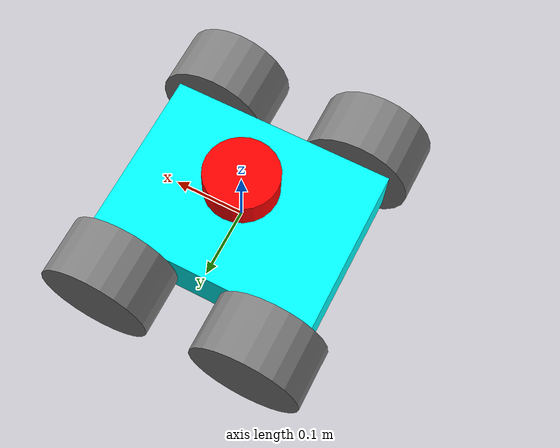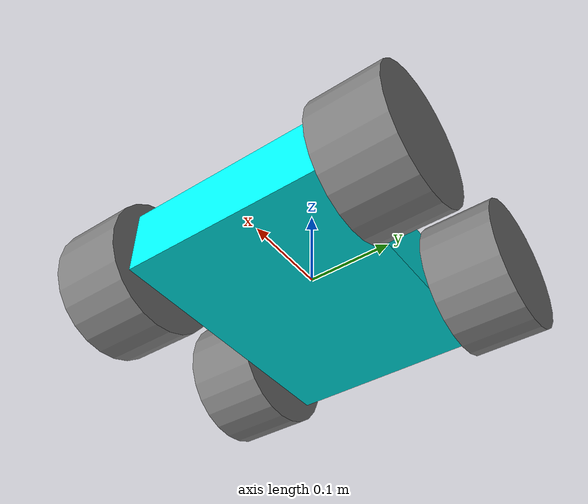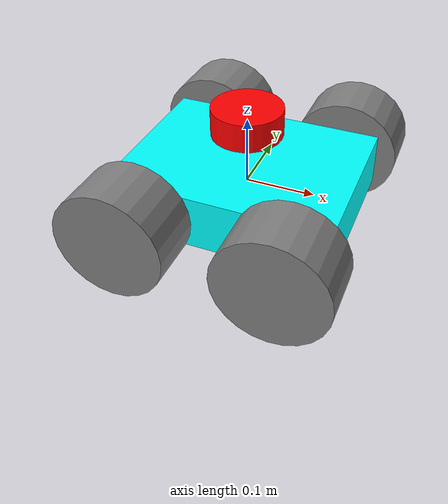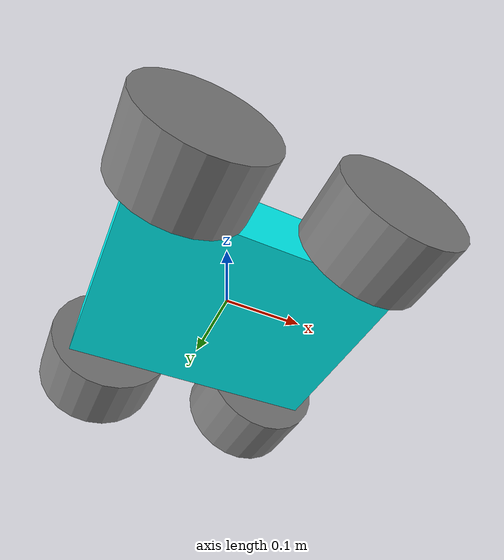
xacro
<?xml version="1.0"?>
<robot xmlns:xacro="http://www.ros.org/wiki/xacro"  name="robot">

       <xacro:arg name="use_ros2_control" default="true"/>
       <xacro:arg name="sim_mode" default="false"/>

       <xacro:include filename="robot_core.xacro" />
       <xacro:include filename="lidar.xacro"/>

       <xacro:if value="$(arg use_ros2_control)">
              <xacro:include filename="ros2_control.xacro" />
       </xacro:if>
       <xacro:unless value="$(arg use_ros2_control)">
              <xacro:include filename="gazebo_control.xacro" />
       </xacro:unless>

</robot>

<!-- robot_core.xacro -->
<robot xmlns:xacro="http://ros.org/wiki/xacro">
  <xacro:include filename="inertial_macros.xacro"/>

<!-- Define robot constants -->
  <xacro:property name="base_width" value="0.241"/>
  <xacro:property name="base_length" value="0.32"/>
  <xacro:property name="base_height" value="0.0785"/>

  <xacro:property name="wheel_radius" value="0.079"/>
  <xacro:property name="wheel_width" value="0.084"/>
  <xacro:property name="wheel_ygap" value="0.0437"/>
  <xacro:property name="wheel_zoff" value="0"/>
  <xacro:property name="wheel_front_xoff" value="0.11"/>
  <xacro:property name="wheel_rear_xoff" value="-0.11"/>

<!-- Robot Base -->
  <link name="base_link">

  </link>

<!-- Robot Chassis-->
 <joint name="chassis_joint" type="fixed">
    <parent link="base_link"/>
    <child link="chassis"/>
    <origin xyz="0 0 0"/>
  </joint>

  <link name="chassis">
    <visual>
      <geometry>
        <box size="${base_length} ${base_width} ${base_height}"/>
      </geometry>
      <material name="Cyan">
        <color rgba="0 1 1 1"/>
      </material>
    </visual>
    <collision>
      <geometry>
        <box size="${base_length} ${base_width} ${base_height}"/>
      </geometry>
    </collision>
    <xacro:inertial_box mass="3" x="${base_length}" y=" ${base_width}" z=" ${base_height}">
      <origin xyz= "0 0 0" rpy="0 0 0"/>
    </xacro:inertial_box>
  </link>

  <gazebo reference="chassis">
    <material>Gazebo/Blue</material>
  </gazebo>

<!-- Robot Footprint -->
  <link name="base_footprint"/>

  <joint name="base_joint" type="fixed">
    <parent link="base_link"/>
    <child link="base_footprint"/>
    <origin xyz="0.0 0.0 ${-(wheel_radius+wheel_zoff)}" rpy="0 0 0"/>
  </joint>

 <!-- Wheels -->
  <xacro:macro name="wheel" params="prefix x_reflect y_reflect">

    <joint name="${prefix}_joint" type="continuous">
      <parent link="base_link"/>
      <child link="${prefix}"/>
      <origin xyz="${x_reflect*wheel_front_xoff} ${y_reflect*(base_width/2+wheel_ygap)} ${-wheel_zoff}" rpy="0 0 0"/>
      <axis xyz="0 1 0"/>
    </joint>

    <link name="${prefix}">
      <visual>
        <origin xyz="0 0 0" rpy="${pi/2} 0 0"/>
        <geometry>
          <cylinder radius="${wheel_radius}" length="${wheel_width}"/>
        </geometry>
        <material name="Gray">
          <color rgba="0.5 0.5 0.5 1.0"/>
        </material>
      </visual>
      <collision>
        <origin xyz="0 0 0" rpy="${pi/2} 0 0"/>
        <geometry>
          <cylinder radius="${wheel_radius}" length="${wheel_width}"/>
        </geometry>
      </collision>
      <xacro:inertial_cylinder mass="0.5" radius="${wheel_radius}" length="${wheel_width}">
        <origin xyz="0 0 0.1" rpy="0 0 0"/>
      </xacro:inertial_cylinder>
    </link>

    <gazebo reference="${prefix}">
      <material>Gazebo/Gray</material>
    </gazebo>

  </xacro:macro>

  <xacro:wheel prefix="drivewhl_l_r" x_reflect="-1" y_reflect="1" />
  <xacro:wheel prefix="drivewhl_r_r" x_reflect="-1" y_reflect="-1" />
  <xacro:wheel prefix="drivewhl_l_f" x_reflect="1" y_reflect="1" />
  <xacro:wheel prefix="drivewhl_r_f" x_reflect="1" y_reflect="-1" />

</robot>

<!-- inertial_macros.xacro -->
<robot xmlns:xacro="http://www.ros.org/wiki/xacro" >

 <!-- Specify some standard inertial calculations https://en.wikipedia.org/wiki/List_of_moments_of_inertia -->
<!-- These make use of xacro's mathematical functionality -->

    <xacro:macro name="inertial_box" params="mass x y z *origin">
        <inertial>
            <xacro:insert_block name="origin"/>
            <mass value="${mass}" />
            <inertia ixx="${(1/12) * mass * (y*y+z*z)}" ixy="0.0" ixz="0.0"
                    iyy="${(1/12) * mass * (x*x+z*z)}" iyz="0.0"
                    izz="${(1/12) * mass * (x*x+y*y)}" />
        </inertial>
    </xacro:macro>

    <xacro:macro name="inertial_cylinder" params="mass length radius *origin">
        <inertial>
            <xacro:insert_block name="origin"/>
            <mass value="${mass}" />
            <inertia ixx="${(1/12) * mass * (3*radius*radius + length*length)}" ixy="0.0" ixz="0.0"
                    iyy="${(1/12) * mass * (3*radius*radius + length*length)}" iyz="0.0"
                    izz="${(1/2) * mass * (radius*radius)}" />
        </inertial>
    </xacro:macro>

</robot>

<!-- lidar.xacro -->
<robot xmlns:xacro="http://www.ros.org/wiki/xacro" >

    <!-- LiDAR -->
    <joint name="laser_joint" type="fixed">
        <parent link="chassis"/>
        <child link="laser_frame"/>
        <origin xyz="0 0 0.1" rpy="0 0 0"/>
        <axis xyz="0 0 1" />
    </joint>

    <link name="laser_frame">
        <visual>
            <geometry>
                <cylinder radius="0.0508" length="0.041"/>
            </geometry>
            <material name="red">
                <color rgba=" 1 0 0 1" />
            </material>
        </visual>
        <visual>
        <geometry>
            <cylinder radius="0.0508" length="0.041"/>
        </geometry>
        <material name="red">
            <color rgba=" 1 0 0 1" />
        </material>
        </visual>
        <collision>
        <geometry>
            <cylinder radius="0.0508" length="0.041"/>
        </geometry>
        </collision>
        <xacro:inertial_cylinder mass="0.1" length="0.041" radius="0.0508">
        <origin xyz="0 0 0.1" rpy="0 0 0"/>
        </xacro:inertial_cylinder>
    </link>

    <gazebo reference="laser_frame">
        <material>Gazebo/Red</material>

        <sensor name="rplidar_a2m12" type="ray">
            <pose> 0 0 0 0 0 0 </pose>
            <visualize>true</visualize>
            <update_rate>10</update_rate>
            <ray>
                <scan>
                    <horizontal>
                        <samples>360</samples>
                        <min_angle>-3.14</min_angle>
                        <max_angle>3.14</max_angle>
                    </horizontal>
                </scan>
                <range>
                    <min>0.3</min>
                    <max>12</max>
                </range>
            </ray>
            <plugin name="rplidar_a2m12_controller" filename="libgazebo_ros_ray_sensor.so">
                <ros>
                    <argument>~/out:=scan</argument>
                </ros>
                <output_type>sensor_msgs/LaserScan</output_type>
                <frame_name>laser_frame</frame_name>
            </plugin>
        </sensor>
    </gazebo>
</robot>
